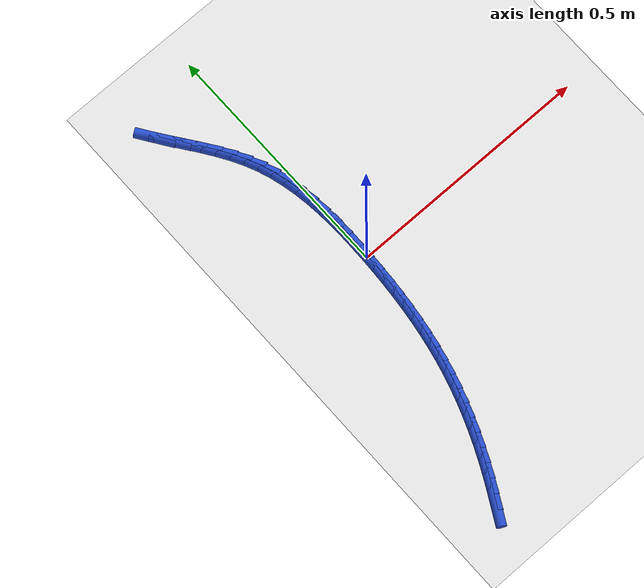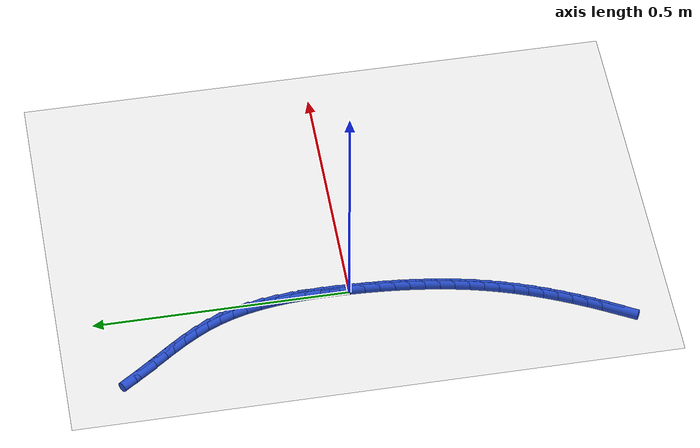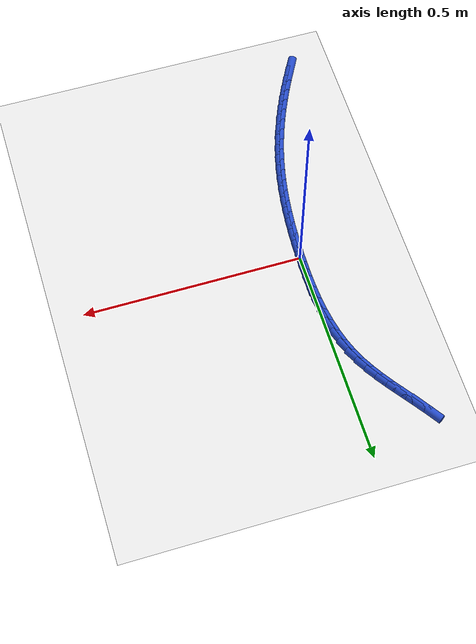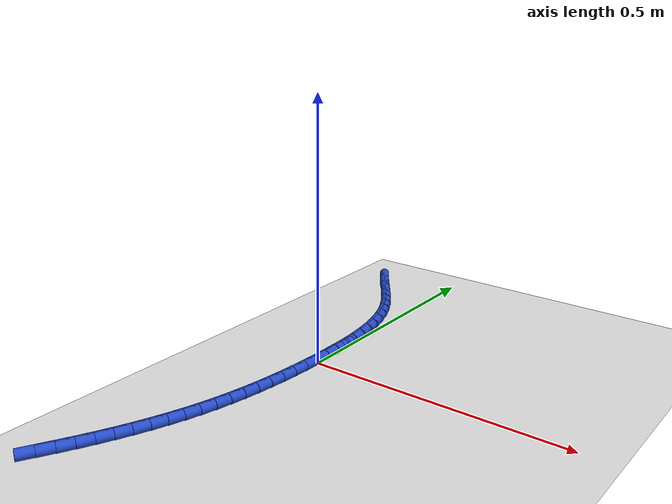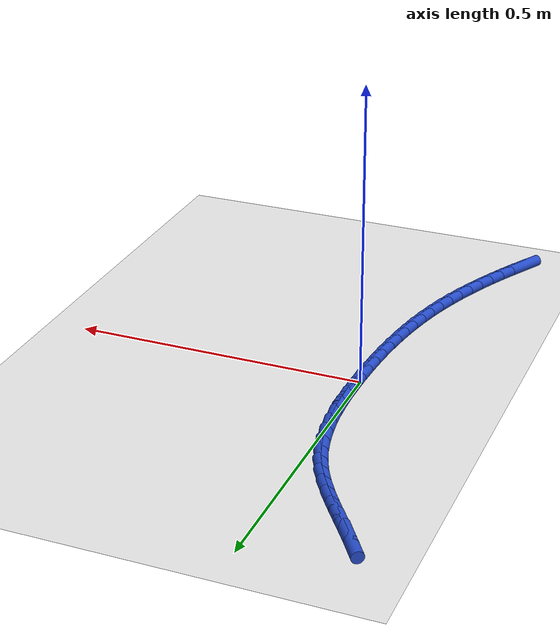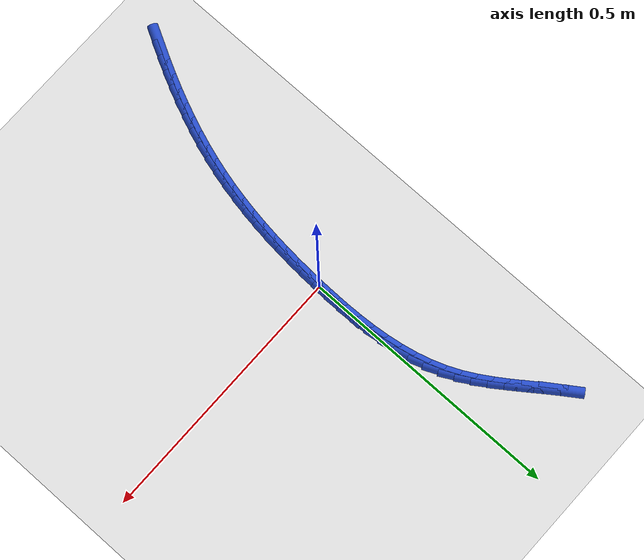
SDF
<sdf version="1.6">
 <world name="default">
  <model name="ground_plane">
   <static>1</static>
   <link name="link">
    <collision name="collision">
     <geometry><plane><normal>0 0 1</normal><size>100 100</size></plane></geometry>
     <surface><friction><ode><mu>100</mu><mu2>50</mu2></ode></friction></surface>
    </collision>
    <visual name="visual">
     <cast_shadows>0</cast_shadows>
     <geometry><plane><normal>0 0 1</normal><size>100 100</size></plane></geometry>
     <material>
      <script><uri>file://media/materials/scripts/gazebo.material</uri><name>Gazebo/WhiteGlow</name></script>
     </material>
    </visual>
   </link>
  </model>
  <model name="line">
   <link name="link_0">
    <pose>-5.637851296924623e-18 -8.326672684688674e-17 0.01 0 1.57 1.5493256196764098</pose>
    <collision name="collision">
     <geometry><cylinder><radius>0.01</radius><length>0.08</length></cylinder></geometry>
    </collision>
    <visual name="visual">
     <material>
      <script><name>Gazebo/Blue</name><uri>file://media/materials/scripts/gazebo.material</uri></script>
     </material>
     <geometry><cylinder><radius>0.01</radius><length>0.08</length></cylinder></geometry>
    </visual>
   </link>
   <link name="link_1">
    <pose>0.0006409472577638208 0.02984758540266312 0.01 0 1.57 -1.569960433688251</pose>
    <collision name="collision">
     <geometry><cylinder><radius>0.01</radius><length>0.08</length></cylinder></geometry>
    </collision>
    <visual name="visual">
     <material>
      <script><name>Gazebo/Blue</name><uri>file://media/materials/scripts/gazebo.material</uri></script>
     </material>
     <geometry><cylinder><radius>0.01</radius><length>0.08</length></cylinder></geometry>
    </visual>
   </link>
   <link name="link_2">
    <pose>0.0006159448351102062 0.059758607077116825 0.01 0 1.57 -1.5417701849137226</pose>
    <collision name="collision">
     <geometry><cylinder><radius>0.01</radius><length>0.08</length></cylinder></geometry>
    </collision>
    <visual name="visual">
     <material>
      <script><name>Gazebo/Blue</name><uri>file://media/materials/scripts/gazebo.material</uri></script>
     </material>
     <geometry><cylinder><radius>0.01</radius><length>0.08</length></cylinder></geometry>
    </visual>
   </link>
   <link name="link_3">
    <pose>-0.00025057467721713517 0.089603295005535 0.01 0 1.57 -1.5073506011070712</pose>
    <collision name="collision">
     <geometry><cylinder><radius>0.01</radius><length>0.08</length></cylinder></geometry>
    </collision>
    <visual name="visual">
     <material>
      <script><name>Gazebo/Blue</name><uri>file://media/materials/scripts/gazebo.material</uri></script>
     </material>
     <geometry><cylinder><radius>0.01</radius><length>0.08</length></cylinder></geometry>
    </visual>
   </link>
   <link name="link_4">
    <pose>-0.0021341786884744923 0.11925187917009146 0.01 0 1.57 -1.4662683386564597</pose>
    <collision name="collision">
     <geometry><cylinder><radius>0.01</radius><length>0.08</length></cylinder></geometry>
    </collision>
    <visual name="visual">
     <material>
      <script><name>Gazebo/Blue</name><uri>file://media/materials/scripts/gazebo.material</uri></script>
     </material>
     <geometry><cylinder><radius>0.01</radius><length>0.08</length></cylinder></geometry>
    </visual>
   </link>
   <link name="link_5">
    <pose>-0.005210434607918151 0.14857458955296016 0.01 0 1.57 -1.4180323461217896</pose>
    <collision name="collision">
     <geometry><cylinder><radius>0.01</radius><length>0.08</length></cylinder></geometry>
    </collision>
    <visual name="visual">
     <material>
      <script><name>Gazebo/Blue</name><uri>file://media/materials/scripts/gazebo.material</uri></script>
     </material>
     <geometry><cylinder><radius>0.01</radius><length>0.08</length></cylinder></geometry>
    </visual>
   </link>
   <link name="link_6">
    <pose>-0.009654909844804401 0.17744165613631502 0.01 0 1.57 -1.3621414315614282</pose>
    <collision name="collision">
     <geometry><cylinder><radius>0.01</radius><length>0.08</length></cylinder></geometry>
    </collision>
    <visual name="visual">
     <material>
      <script><name>Gazebo/Blue</name><uri>file://media/materials/scripts/gazebo.material</uri></script>
     </material>
     <geometry><cylinder><radius>0.01</radius><length>0.08</length></cylinder></geometry>
    </visual>
   </link>
   <link name="link_7">
    <pose>-0.015643171808389526 0.20572330890232987 0.01 0 1.57 -1.2981575260807563</pose>
    <collision name="collision">
     <geometry><cylinder><radius>0.01</radius><length>0.08</length></cylinder></geometry>
    </collision>
    <visual name="visual">
     <material>
      <script><name>Gazebo/Blue</name><uri>file://media/materials/scripts/gazebo.material</uri></script>
     </material>
     <geometry><cylinder><radius>0.01</radius><length>0.08</length></cylinder></geometry>
    </visual>
   </link>
   <link name="link_8">
    <pose>-0.02335078790792982 0.23328977783317867 0.01 0 1.57 -1.2258109475852548</pose>
    <collision name="collision">
     <geometry><cylinder><radius>0.01</radius><length>0.08</length></cylinder></geometry>
    </collision>
    <visual name="visual">
     <material>
      <script><name>Gazebo/Blue</name><uri>file://media/materials/scripts/gazebo.material</uri></script>
     </material>
     <geometry><cylinder><radius>0.01</radius><length>0.08</length></cylinder></geometry>
    </visual>
   </link>
   <link name="link_9">
    <pose>-0.03295332555268156 0.2600112929110353 0.01 0 1.57 -1.1460980289142053</pose>
    <collision name="collision">
     <geometry><cylinder><radius>0.01</radius><length>0.08</length></cylinder></geometry>
    </collision>
    <visual name="visual">
     <material>
      <script><name>Gazebo/Blue</name><uri>file://media/materials/scripts/gazebo.material</uri></script>
     </material>
     <geometry><cylinder><radius>0.01</radius><length>0.08</length></cylinder></geometry>
    </visual>
   </link>
   <link name="link_10">
    <pose>-0.04460309304341617 0.28577259310153785 0.01 0 1.57 -1.0726730290716613</pose>
    <collision name="collision">
     <geometry><cylinder><radius>0.01</radius><length>0.08</length></cylinder></geometry>
    </collision>
    <visual name="visual">
     <material>
      <script><name>Gazebo/Blue</name><uri>file://media/materials/scripts/gazebo.material</uri></script>
     </material>
     <geometry><cylinder><radius>0.01</radius><length>0.08</length></cylinder></geometry>
    </visual>
   </link>
   <link name="link_11">
    <pose>-0.0581362016974307 0.3106556603905201 0.01 0 1.57 -1.0157282815609903</pose>
    <collision name="collision">
     <geometry><cylinder><radius>0.01</radius><length>0.08</length></cylinder></geometry>
    </collision>
    <visual name="visual">
     <material>
      <script><name>Gazebo/Blue</name><uri>file://media/materials/scripts/gazebo.material</uri></script>
     </material>
     <geometry><cylinder><radius>0.01</radius><length>0.08</length></cylinder></geometry>
    </visual>
   </link>
   <link name="link_12">
    <pose>-0.07316066976703656 0.3348847607430282 0.01 0 1.57 -0.9755450756221523</pose>
    <collision name="collision">
     <geometry><cylinder><radius>0.01</radius><length>0.08</length></cylinder></geometry>
    </collision>
    <visual name="visual">
     <material>
      <script><name>Gazebo/Blue</name><uri>file://media/materials/scripts/gazebo.material</uri></script>
     </material>
     <geometry><cylinder><radius>0.01</radius><length>0.08</length></cylinder></geometry>
    </visual>
   </link>
   <link name="link_13">
    <pose>-0.08927946854012592 0.35868730841000834 0.01 0 1.57 -0.9517676002454188</pose>
    <collision name="collision">
     <geometry><cylinder><radius>0.01</radius><length>0.08</length></cylinder></geometry>
    </collision>
    <visual name="visual">
     <material>
      <script><name>Gazebo/Blue</name><uri>file://media/materials/scripts/gazebo.material</uri></script>
     </material>
     <geometry><cylinder><radius>0.01</radius><length>0.08</length></cylinder></geometry>
    </visual>
   </link>
   <link name="link_14">
    <pose>-0.10609556930459092 0.3822907176424073 0.01 0 1.57 -0.9439486541926309</pose>
    <collision name="collision">
     <geometry><cylinder><radius>0.01</radius><length>0.08</length></cylinder></geometry>
    </collision>
    <visual name="visual">
     <material>
      <script><name>Gazebo/Blue</name><uri>file://media/materials/scripts/gazebo.material</uri></script>
     </material>
     <geometry><cylinder><radius>0.01</radius><length>0.08</length></cylinder></geometry>
    </visual>
   </link>
   <link name="link_15">
    <pose>-0.12321194334832368 0.4059224026911712 0.01 0 1.57 -0.9517340529604628</pose>
    <collision name="collision">
     <geometry><cylinder><radius>0.01</radius><length>0.08</length></cylinder></geometry>
    </collision>
    <visual name="visual">
     <material>
      <script><name>Gazebo/Blue</name><uri>file://media/materials/scripts/gazebo.material</uri></script>
     </material>
     <geometry><cylinder><radius>0.01</radius><length>0.08</length></cylinder></geometry>
    </visual>
   </link>
   <link name="link_16">
    <pose>-0.1402315619592165 0.4298097778072469 0.01 0 1.57 -0.9749140818394112</pose>
    <collision name="collision">
     <geometry><cylinder><radius>0.01</radius><length>0.08</length></cylinder></geometry>
    </collision>
    <visual name="visual">
     <material>
      <script><name>Gazebo/Blue</name><uri>file://media/materials/scripts/gazebo.material</uri></script>
     </material>
     <geometry><cylinder><radius>0.01</radius><length>0.08</length></cylinder></geometry>
    </visual>
   </link>
   <link name="link_212">
    <pose>-0.13467943029633545 -0.5002275183006433 0.01 0 1.57 1.0750801179238731</pose>
    <collision name="collision">
     <geometry><cylinder><radius>0.01</radius><length>0.08</length></cylinder></geometry>
    </collision>
    <visual name="visual">
     <material>
      <script><name>Gazebo/Blue</name><uri>file://media/materials/scripts/gazebo.material</uri></script>
     </material>
     <geometry><cylinder><radius>0.01</radius><length>0.08</length></cylinder></geometry>
    </visual>
   </link>
   <link name="link_213">
    <pose>-0.12065266174699057 -0.4742882000652911 0.01 0 1.57 1.0962806318698683</pose>
    <collision name="collision">
     <geometry><cylinder><radius>0.01</radius><length>0.08</length></cylinder></geometry>
    </collision>
    <visual name="visual">
     <material>
      <script><name>Gazebo/Blue</name><uri>file://media/materials/scripts/gazebo.material</uri></script>
     </material>
     <geometry><cylinder><radius>0.01</radius><length>0.08</length></cylinder></geometry>
    </visual>
   </link>
   <link name="link_214">
    <pose>-0.10723351934456175 -0.4481636318576233 0.01 0 1.57 1.1192124913611077</pose>
    <collision name="collision">
     <geometry><cylinder><radius>0.01</radius><length>0.08</length></cylinder></geometry>
    </collision>
    <visual name="visual">
     <material>
      <script><name>Gazebo/Blue</name><uri>file://media/materials/scripts/gazebo.material</uri></script>
     </material>
     <geometry><cylinder><radius>0.01</radius><length>0.08</length></cylinder></geometry>
    </visual>
   </link>
   <link name="link_215">
    <pose>-0.09446883758475365 -0.42184524162960796 0.01 0 1.57 1.1439037220953847</pose>
    <collision name="collision">
     <geometry><cylinder><radius>0.01</radius><length>0.08</length></cylinder></geometry>
    </collision>
    <visual name="visual">
     <material>
      <script><name>Gazebo/Blue</name><uri>file://media/materials/scripts/gazebo.material</uri></script>
     </material>
     <geometry><cylinder><radius>0.01</radius><length>0.08</length></cylinder></geometry>
    </visual>
   </link>
   <link name="link_216">
    <pose>-0.08240545096327195 -0.39532445733321525 0.01 0 1.57 1.1703757694194064</pose>
    <collision name="collision">
     <geometry><cylinder><radius>0.01</radius><length>0.08</length></cylinder></geometry>
    </collision>
    <visual name="visual">
     <material>
      <script><name>Gazebo/Blue</name><uri>file://media/materials/scripts/gazebo.material</uri></script>
     </material>
     <geometry><cylinder><radius>0.01</radius><length>0.08</length></cylinder></geometry>
    </visual>
   </link>
   <link name="link_217">
    <pose>-0.07109019397582131 -0.3685927069204132 0.01 0 1.57 1.1986410885344905</pose>
    <collision name="collision">
     <geometry><cylinder><radius>0.01</radius><length>0.08</length></cylinder></geometry>
    </collision>
    <visual name="visual">
     <material>
      <script><name>Gazebo/Blue</name><uri>file://media/materials/scripts/gazebo.material</uri></script>
     </material>
     <geometry><cylinder><radius>0.01</radius><length>0.08</length></cylinder></geometry>
    </visual>
   </link>
   <link name="link_218">
    <pose>-0.060569901118106756 -0.34164141834317086 0.01 0 1.57 1.2287005067277466</pose>
    <collision name="collision">
     <geometry><cylinder><radius>0.01</radius><length>0.08</length></cylinder></geometry>
    </collision>
    <visual name="visual">
     <material>
      <script><name>Gazebo/Blue</name><uri>file://media/materials/scripts/gazebo.material</uri></script>
     </material>
     <geometry><cylinder><radius>0.01</radius><length>0.08</length></cylinder></geometry>
    </visual>
   </link>
   <link name="link_219">
    <pose>-0.05089140688583303 -0.314462019553456 0.01 0 1.57 1.2605404276821957</pose>
    <collision name="collision">
     <geometry><cylinder><radius>0.01</radius><length>0.08</length></cylinder></geometry>
    </collision>
    <visual name="visual">
     <material>
      <script><name>Gazebo/Blue</name><uri>file://media/materials/scripts/gazebo.material</uri></script>
     </material>
     <geometry><cylinder><radius>0.01</radius><length>0.08</length></cylinder></geometry>
    </visual>
   </link>
   <link name="link_220">
    <pose>-0.042101545774705686 -0.2870459385032391 0.01 0 1.57 1.2941000275362353</pose>
    <collision name="collision">
     <geometry><cylinder><radius>0.01</radius><length>0.08</length></cylinder></geometry>
    </collision>
    <visual name="visual">
     <material>
      <script><name>Gazebo/Blue</name><uri>file://media/materials/scripts/gazebo.material</uri></script>
     </material>
     <geometry><cylinder><radius>0.01</radius><length>0.08</length></cylinder></geometry>
    </visual>
   </link>
   <link name="link_221">
    <pose>-0.03424629352509388 -0.25938473266661305 0.01 0 1.57 1.3279687190029126</pose>
    <collision name="collision">
     <geometry><cylinder><radius>0.01</radius><length>0.08</length></cylinder></geometry>
    </collision>
    <visual name="visual">
     <material>
      <script><name>Gazebo/Blue</name><uri>file://media/materials/scripts/gazebo.material</uri></script>
     </material>
     <geometry><cylinder><radius>0.01</radius><length>0.08</length></cylinder></geometry>
    </visual>
   </link>
   <link name="link_222">
    <pose>-0.027332815194293057 -0.23147581315482949 0.01 0 1.57 1.3601798490952741</pose>
    <collision name="collision">
     <geometry><cylinder><radius>0.01</radius><length>0.08</length></cylinder></geometry>
    </collision>
    <visual name="visual">
     <material>
      <script><name>Gazebo/Blue</name><uri>file://media/materials/scripts/gazebo.material</uri></script>
     </material>
     <geometry><cylinder><radius>0.01</radius><length>0.08</length></cylinder></geometry>
    </visual>
   </link>
   <link name="link_223">
    <pose>-0.0213144740244694 -0.20332470575992417 0.01 0 1.57 1.3905168067365528</pose>
    <collision name="collision">
     <geometry><cylinder><radius>0.01</radius><length>0.08</length></cylinder></geometry>
    </collision>
    <visual name="visual">
     <material>
      <script><name>Gazebo/Blue</name><uri>file://media/materials/scripts/gazebo.material</uri></script>
     </material>
     <geometry><cylinder><radius>0.01</radius><length>0.08</length></cylinder></geometry>
    </visual>
   </link>
   <link name="link_224">
    <pose>-0.016140675654396197 -0.17493753318108668 0.01 0 1.57 1.4189248208940597</pose>
    <collision name="collision">
     <geometry><cylinder><radius>0.01</radius><length>0.08</length></cylinder></geometry>
    </collision>
    <visual name="visual">
     <material>
      <script><name>Gazebo/Blue</name><uri>file://media/materials/scripts/gazebo.material</uri></script>
     </material>
     <geometry><cylinder><radius>0.01</radius><length>0.08</length></cylinder></geometry>
    </visual>
   </link>
   <link name="link_225">
    <pose>-0.011760825722846277 -0.1463204181175043 0.01 0 1.57 1.4453702124684629</pose>
    <collision name="collision">
     <geometry><cylinder><radius>0.01</radius><length>0.08</length></cylinder></geometry>
    </collision>
    <visual name="visual">
     <material>
      <script><name>Gazebo/Blue</name><uri>file://media/materials/scripts/gazebo.material</uri></script>
     </material>
     <geometry><cylinder><radius>0.01</radius><length>0.08</length></cylinder></geometry>
    </visual>
   </link>
   <link name="link_226">
    <pose>-0.008124329868592605 -0.11747948326836513 0.01 0 1.57 1.4698374172105215</pose>
    <collision name="collision">
     <geometry><cylinder><radius>0.01</radius><length>0.08</length></cylinder></geometry>
    </collision>
    <visual name="visual">
     <material>
      <script><name>Gazebo/Blue</name><uri>file://media/materials/scripts/gazebo.material</uri></script>
     </material>
     <geometry><cylinder><radius>0.01</radius><length>0.08</length></cylinder></geometry>
    </visual>
   </link>
   <link name="link_227">
    <pose>-0.005180593730408166 -0.08842085133285713 0.01 0 1.57 1.4923259270959592</pose>
    <collision name="collision">
     <geometry><cylinder><radius>0.01</radius><length>0.08</length></cylinder></geometry>
    </collision>
    <visual name="visual">
     <material>
      <script><name>Gazebo/Blue</name><uri>file://media/materials/scripts/gazebo.material</uri></script>
     </material>
     <geometry><cylinder><radius>0.01</radius><length>0.08</length></cylinder></geometry>
    </visual>
   </link>
   <link name="link_228">
    <pose>-0.0028790229470658877 -0.05915064501016763 0.01 0 1.57 1.5128473150865356</pose>
    <collision name="collision">
     <geometry><cylinder><radius>0.01</radius><length>0.08</length></cylinder></geometry>
    </collision>
    <visual name="visual">
     <material>
      <script><name>Gazebo/Blue</name><uri>file://media/materials/scripts/gazebo.material</uri></script>
     </material>
     <geometry><cylinder><radius>0.01</radius><length>0.08</length></cylinder></geometry>
    </visual>
   </link>
   <link name="link_229">
    <pose>-0.0011690231573388663 -0.029674986999486203 0.01 0 1.57 1.531422460104561</pose>
    <collision name="collision">
     <geometry><cylinder><radius>0.01</radius><length>0.08</length></cylinder></geometry>
    </collision>
    <visual name="visual">
     <material>
      <script><name>Gazebo/Blue</name><uri>file://media/materials/scripts/gazebo.material</uri></script>
     </material>
     <geometry><cylinder><radius>0.01</radius><length>0.08</length></cylinder></geometry>
    </visual>
   </link>
   <link name="link_230">
    <pose>-1.0408340855860843e-17 -1.0408340855860843e-16 0.01 0 1.57 1.5480790458255467</pose>
    <collision name="collision">
     <geometry><cylinder><radius>0.01</radius><length>0.08</length></cylinder></geometry>
    </collision>
    <visual name="visual">
     <material>
      <script><name>Gazebo/Blue</name><uri>file://media/materials/scripts/gazebo.material</uri></script>
     </material>
     <geometry><cylinder><radius>0.01</radius><length>0.08</length></cylinder></geometry>
    </visual>
   </link>
   <link name="link_231">
    <pose>0.0006786408861776986 0.029868193289102618 0.01 0 1.57 1.562849371290276</pose>
    <collision name="collision">
     <geometry><cylinder><radius>0.01</radius><length>0.08</length></cylinder></geometry>
    </collision>
    <visual name="visual">
     <material>
      <script><name>Gazebo/Blue</name><uri>file://media/materials/scripts/gazebo.material</uri></script>
     </material>
     <geometry><cylinder><radius>0.01</radius><length>0.08</length></cylinder></geometry>
    </visual>
   </link>
   <link name="link_232">
    <pose>0.0009174938624212801 0.05992347016863393 0.01 0 1.57 1.555486429453844</pose>
    <collision name="collision">
     <geometry><cylinder><radius>0.01</radius><length>0.08</length></cylinder></geometry>
    </collision>
    <visual name="visual">
     <material>
      <script><name>Gazebo/Blue</name><uri>file://media/materials/scripts/gazebo.material</uri></script>
     </material>
     <geometry><cylinder><radius>0.01</radius><length>0.08</length></cylinder></geometry>
    </visual>
   </link>
  </model>
 </world>
</sdf>
